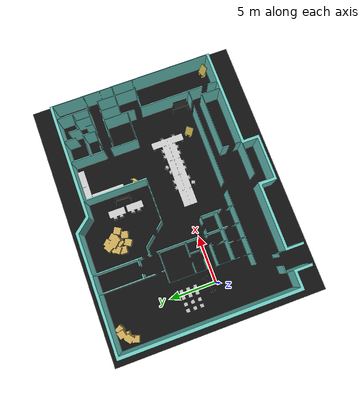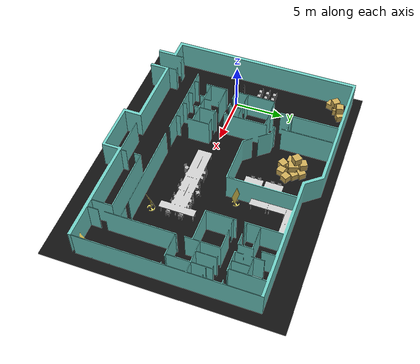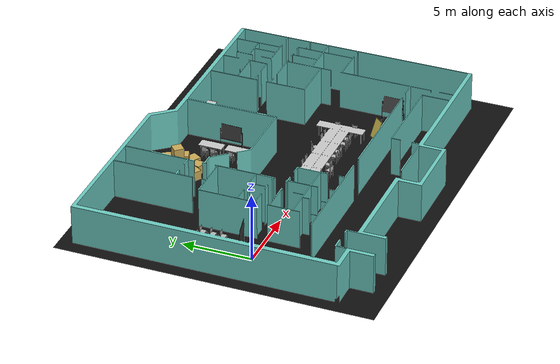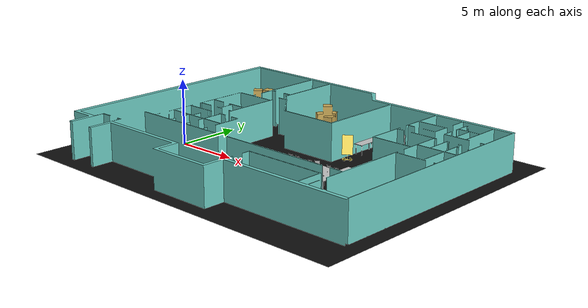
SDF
<?xml version="1.0"?>

<sdf version="1.9">
<world name="mvp_world">
<light type="directional" name="sun">
      <cast_shadows>true</cast_shadows>
      <pose>0 0 10 0 0 0</pose>
      <diffuse>0.8 0.8 0.8 1</diffuse>
      <specular>0.2 0.2 0.2 1</specular>
      <attenuation>
        <range>1000</range>
        <constant>0.9</constant>
        <linear>0.01</linear>
        <quadratic>0.001</quadratic>
      </attenuation>
      <direction>-0.5 0.1 -0.9</direction>
    </light>

  <gravity>0 0 -9.8</gravity>
  <magnetic_field>6e-06 2.3e-05 -4.2e-05</magnetic_field>
  <atmosphere type='adiabatic' />
  <physics type='ode'>
    <max_step_size>0.001</max_step_size>
    <real_time_factor>1</real_time_factor>
    <real_time_update_rate>1000</real_time_update_rate>
  </physics>
  <plugin
    filename="gz-sim-physics-system"
    name="gz::sim::systems::Physics">
</plugin>

  <plugin
    filename="gz-sim-user-commands-system"
    name="gz::sim::systems::UserCommands">
  </plugin>
  <plugin
    filename="gz-sim-scene-broadcaster-system"
    name="gz::sim::systems::SceneBroadcaster">
  </plugin>

  <scene>
      <ambient>1.0 1.0 1.0 1.0</ambient>
      <background>0.8 0.8 0.8 1.0</background>
      <grid>false</grid>
      <origin_visual>false</origin_visual>
    </scene>

  <model name="mvp0">

    <link name="link">
    <pose>0 -4 0 0 0 0 </pose>
      <inertial>
        <mass>1</mass>
        <inertia>
          <ixx>0.2</ixx>
          <ixy>0.0</ixy>
          <ixz>0.0</ixz>
          <iyy>0.2</iyy>
          <iyz>0.0</iyz>
          <izz>0.3</izz>
        </inertia>
      </inertial>
      <collision name="collision">

        <geometry>
          <mesh>
          <scale>1 1 1</scale>

            <uri>model://simple_office.dae</uri>
          </mesh>
        </geometry>
      </collision>
      <visual name="visual">

        <geometry>
          <mesh>
            <scale>1 1 1</scale>
            <uri>model://simple_office.dae</uri>
          </mesh>
        </geometry>
      </visual>
    </link>
    <static>1</static>
  </model>
</world>
</sdf>
